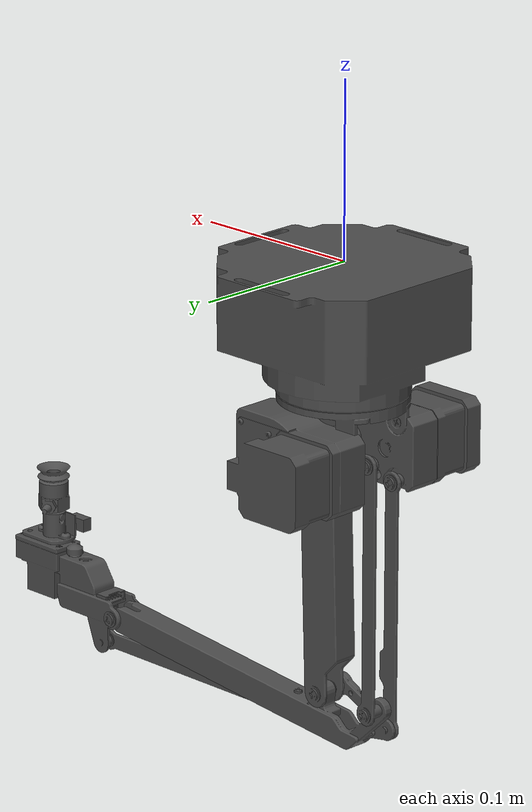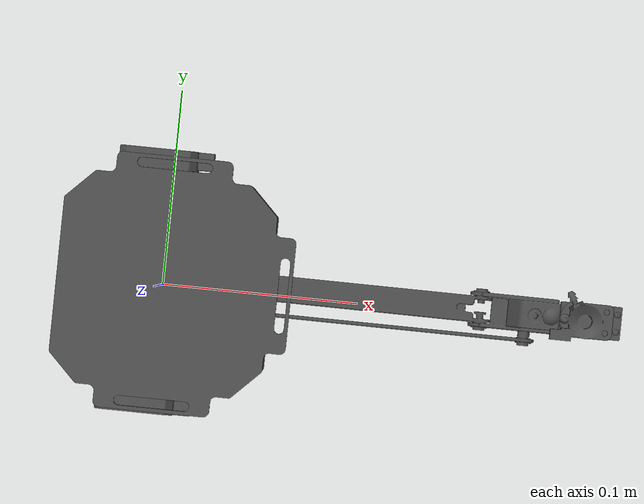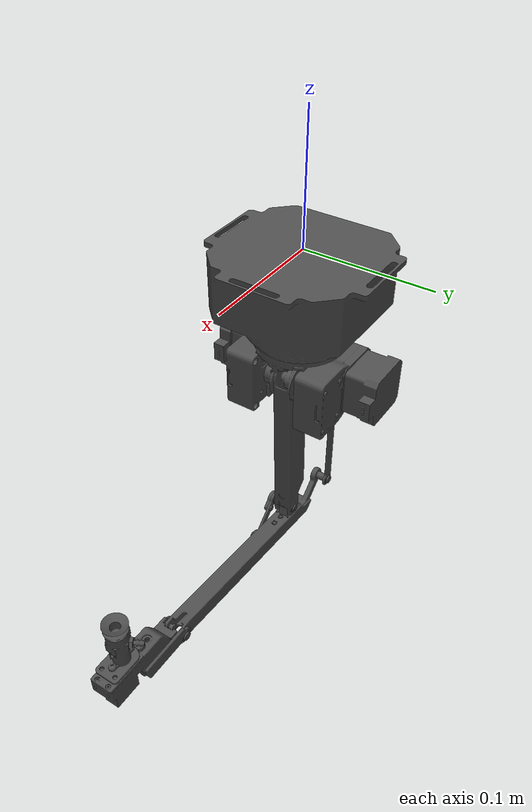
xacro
<?xml version="1.0"?>
<robot name="swiftpro" xmlns:xacro="http://www.ros.org/wiki/xacro">
  <xacro:arg name="manipulator_namespace" default="swiftpro" />
  <xacro:include filename="$(find swiftpro_description)/urdf/swiftpro.urdf.xacro" />
  <xacro:swiftpro prefix="$(arg manipulator_namespace)"/>
</robot>

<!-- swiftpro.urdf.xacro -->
<robot name="swiftpro" xmlns:xacro="http://ros.org/wiki/xacro">
	<xacro:macro name="swiftpro" params="prefix">
		<link name="${prefix}/manipulator_base_link">
			<visual>
				<geometry>
					<mesh filename="package://swiftpro_description/resources/meshes/base.dae"/>
				</geometry>
				<origin xyz = "0 0 0 " rpy = "0 0 0"/>
				<material name = "">
					<color rgba = "0.3 0.3 0.3 1" />
				</material>
			</visual>
		</link>

		<link name="${prefix}/link1">
			<visual>
				<geometry>
					<mesh filename="package://swiftpro_description/resources/meshes/link1.dae"/>
				</geometry>
				<origin xyz = "0 0 0" rpy = "0 0 0" />
				<material name = "">
					<color rgba = "0.3 0.3 0.3 1" />
				</material>
			</visual>
		</link>

		<link name="${prefix}/link2">
			<visual>
				<geometry>
					<mesh filename="package://swiftpro_description/resources/meshes/link2.dae"/>
				</geometry>
				<origin xyz = "-0.0133 0 0.1056" rpy = "0 0 0" />
				<material name = "">
					<color rgba = "0.3 0.3 0.3 1" />
				</material>
			</visual>
		</link>

		<link name="${prefix}/link3">
			<visual>
				<geometry>
					<mesh filename="package://swiftpro_description/resources/meshes/link3.dae"/>
				</geometry>
				<origin xyz="-0.0133 0 0.2476"/>
				<material name="">
					<color rgba = "0.3 0.3 0.3 1" />
				</material>
			</visual>
		</link>

		<link name="${prefix}/link4">
			<visual>
				<geometry>
					<mesh filename="package://swiftpro_description/resources/meshes/link4.dae"/>
				</geometry>
				<origin xyz = "-0.0133 0 0.2476" rpy = "0 0 0" />
				<material name = "">
					<color rgba = "0.3 0.3 0.3 1" />
				</material>
			</visual>
		</link>

		<link name="${prefix}/link5">
			<visual>
				<geometry>
					<mesh filename="package://swiftpro_description/resources/meshes/link5.dae"/>
				</geometry>
				<origin xyz = "0.0214 0 0.1223" rpy = "0 0 0" />
				<material name = "">
					<color rgba = "0.3 0.3 0.3 1" />
				</material>
			</visual>
		</link>

		<link name="${prefix}/link6">
			<visual>
				<geometry>
					<mesh filename="package://swiftpro_description/resources/meshes/link6.dae"/>
				</geometry>
				<origin xyz = "-0.0133 0 0.1056" rpy = "0 0 0" />
				<material name = "">
					<color rgba = "0.3 0.3 0.3 1" />
				</material>
			</visual>
		</link>

		<link name="${prefix}/link7">
			<visual>
				<geometry>
					<mesh filename="package://swiftpro_description/resources/meshes/link7.dae"/>
				</geometry>
				<origin xyz = "0.0322 0 0.1026" rpy = "0 0 0" />
				<material name = "">
					<color rgba = "0.3 0.3 0.3 1" />
				</material>
			</visual>
		</link>

		<link name="${prefix}/link8A">
			<visual>
				<geometry>
					<mesh filename="package://swiftpro_description/resources/meshes/suction_a.dae"/>
				</geometry>
				<origin xyz = "-0.172 0 0.2476" rpy = "0 0 0" />
				<material name = "">
					<color rgba = "0.3 0.3 0.3 1" />
				</material>
			</visual>
		</link>

		<link name="${prefix}/link8B">
			<visual>
				<geometry>
					<mesh filename="package://swiftpro_description/resources/meshes/suction_b.dae"/>
				</geometry>
				<origin xyz = "-0.2285 0 0.2476" rpy = "0 0 0" />
				<material name = "">
					<color rgba = "0.3 0.3 0.3 1" />
				</material>
			</visual>
		</link>

		<link name="${prefix}/link9">
			<visual>
				<geometry>
					<mesh filename="package://swiftpro_description/resources/meshes/link9.dae"/>
				</geometry>
				<origin xyz = "-0.1994 0 0.2746" rpy = "0 0 0" />
				<material name = "">
					<color rgba = "0.3 0.3 0.3 1" />
				</material>
			</visual>
		</link>

		<joint name="${prefix}/joint1" type="revolute">
			<axis xyz="0 0 1"/>
			<limit effort = "1000.0" lower = "-1.571" upper = "1.571" velocity = "0.2" />
			<parent link="${prefix}/manipulator_base_link"/>
			<child link="${prefix}/link1"/>
			<origin xyz= "0 0 0" rpy = " 0 0 0" />
		</joint>

		<joint name="${prefix}/joint2" type="revolute">
			<axis xyz="0 1 0"/>
			<limit effort = "1000.0" lower = "-1.571" upper = "0.05" velocity = "0.2" />
			<parent link="${prefix}/link1"/>
			<child link="${prefix}/link2"/>
			<origin xyz= "0.0133 0 -0.1056" rpy = " 0 0 0" />
		</joint>

		<joint name="${prefix}/passive_joint1" type="continuous">
			<axis xyz="0 1 0"/>
			<parent link="${prefix}/link2" />
			<child link="${prefix}/link3" />
			<origin xyz="0 0 -0.142 " rpy="0 0 0"/>
		</joint>

		<joint name="${prefix}/passive_joint2" type="continuous">
			<axis xyz="0 1 0"/>
			<parent link="${prefix}/link2"/>
			<child link="${prefix}/link4"/>
			<origin xyz= "0 0 -0.142" rpy = " 0 0 0" />
		</joint>

		<joint name="${prefix}/passive_joint3" type="continuous">
			<axis xyz="0 1 0"/>
			<parent link="${prefix}/link1"/>
			<child link="${prefix}/link5"/>
			<origin xyz= "-0.0214 0 -0.1223" rpy = "0 0 0" />
		</joint>

		<joint name="${prefix}/joint3" type="revolute">
			<axis xyz="0 1 0"/>
			<limit effort = "1000.0" lower = "-1.571" upper = "0.05" velocity = "0.2" />
			<parent link="${prefix}/link1"/>
			<child link="${prefix}/link6"/>
			<origin xyz= "0.0133 0 -0.1056" rpy = " 0 0 0" />
		</joint>

		<joint name="${prefix}/passive_joint5" type="continuous">
			<axis xyz="0 1 0"/>
			<parent link="${prefix}/link6"/>
			<child link="${prefix}/link7"/>
			<origin xyz= "-0.0455 0 0.003" rpy = " 0 0 0" />
		</joint>

		<joint name="${prefix}/passive_joint7" type="continuous">
			<axis xyz="0 1 0"/>
			<parent link="${prefix}/link3"/>
			<child link="${prefix}/link8A"/>
			<origin xyz= "0.1587 0 0" rpy = " 0 0 0" />
		</joint>

		<joint name="${prefix}/joint4" type="revolute">
			<axis xyz="0 0 1"/>
			<limit effort = "1000.0" lower = "-1.571" upper = "1.571" velocity = "0.2" />
			<parent link="${prefix}/link8A"/>
			<child link="${prefix}/link8B"/>
			<origin xyz= "0.0565 0 0.0" rpy = " 0 0 0" />
		</joint>

		<joint name="${prefix}/passive_joint8" type="continuous">
			<axis xyz="0 1 0"/>
			<parent link="${prefix}/link8A"/>
			<child link="${prefix}/link9"/>
			<origin xyz= "0.0274 0 -0.027" rpy = " 0 0 0" />
		</joint>
	</xacro:macro>
</robot>
